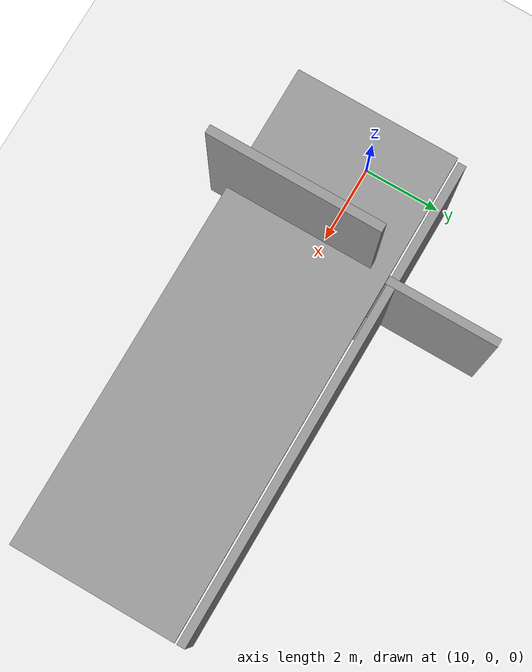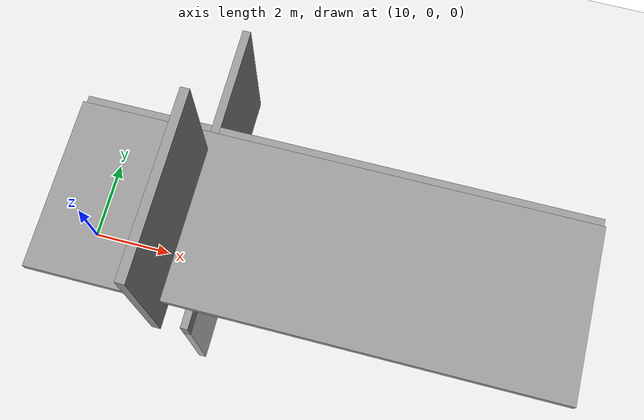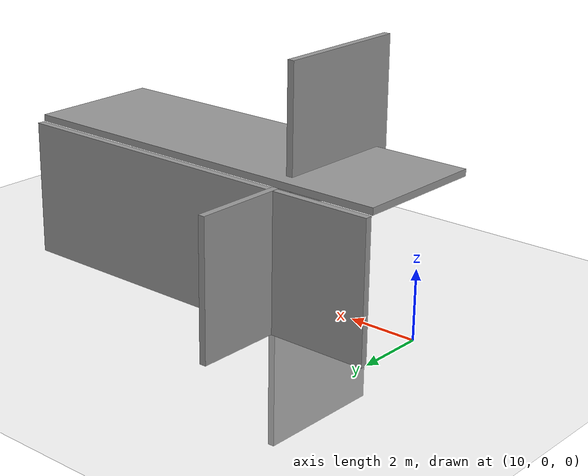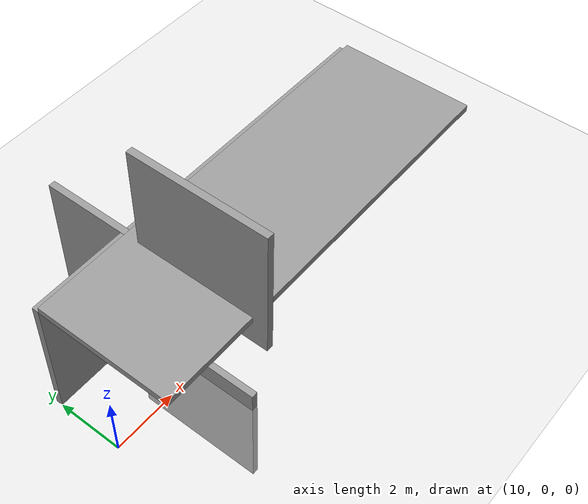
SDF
<sdf version="1.7">
 <world name="default">
  <model name="ground_plane">
   <static>1</static>
   <link name="link">
    <collision name="collision">
     <geometry><plane><normal>0 0 1</normal><size>100 100</size></plane></geometry>
     <surface>
      <contact><collide_bitmask>65535</collide_bitmask></contact>
      <friction><ode><mu>100</mu><mu2>50</mu2></ode></friction>
     </surface>
    </collision>
    <visual name="visual">
     <cast_shadows>0</cast_shadows>
     <geometry><plane><normal>0 0 1</normal><size>100 100</size></plane></geometry>
     <material>
      <script><uri>file://media/materials/scripts/gazebo.material</uri><name>Gazebo/Grey</name></script>
     </material>
    </visual>
   </link>
  </model>
  <model name="grey_wall_clone_clone">
   <static>1</static>
   <link name="link">
    <pose>0 0 2 0 -0 0</pose>
    <collision name="collision"><geometry><box><size>12 0.2 4</size></box></geometry></collision>
    <visual name="visual">
     <cast_shadows>0</cast_shadows>
     <geometry><box><size>12 0.2 4</size></box></geometry>
     <material><script><name>vrc/grey_wall</name><uri>__default__</uri></script></material>
    </visual>
   </link>
   <pose>16.0069 2.10317 -0.00644 0 -0 0</pose>
  </model>
  <model name="grey_wall_0_clone_1_clone">
   <static>1</static>
   <link name="link">
    <pose>0 0 2 0 -0 0</pose>
    <collision name="collision"><geometry><box><size>0.2 4 4</size></box></geometry></collision>
    <visual name="visual">
     <cast_shadows>0</cast_shadows>
     <geometry><box><size>0.2 4 4</size></box></geometry>
     <material><script><name>vrc/grey_wall</name><uri>__default__</uri></script></material>
    </visual>
   </link>
   <pose>13.0714 2.72769 0 0 -0 0</pose>
  </model>
  <model name="grey_wall_0_clone_1_clone_0_clone">
   <static>1</static>
   <link name="link">
    <pose>0 0 2 0 -0 0</pose>
    <collision name="collision"><geometry><box><size>0.2 4 4</size></box></geometry></collision>
    <visual name="visual">
     <cast_shadows>0</cast_shadows>
     <geometry><box><size>0.2 4 4</size></box></geometry>
     <material><script><name>vrc/grey_wall</name><uri>__default__</uri></script></material>
    </visual>
   </link>
   <pose>12.9912 -0.468476 3.25039 0 -0 0</pose>
  </model>
  <model name="grey_wall_0_clone_1_clone_0_clone_clone_1">
   <static>1</static>
   <link name="link">
    <pose>0 0 2 0 -0 0</pose>
    <collision name="collision"><geometry><box><size>0.2 4 4</size></box></geometry></collision>
    <visual name="visual">
     <cast_shadows>0</cast_shadows>
     <geometry><box><size>0.2 4 4</size></box></geometry>
     <material><script><name>vrc/grey_wall</name><uri>__default__</uri></script></material>
    </visual>
   </link>
   <pose>13.0698 0.073294 -3.38849 0 -0 0</pose>
  </model>
  <model name="grey_wall_1_clone">
   <static>1</static>
   <link name="link">
    <pose>0 0 2 0 -0 0</pose>
    <collision name="collision"><geometry><box><size>12 4 0.2</size></box></geometry></collision>
    <visual name="visual">
     <cast_shadows>0</cast_shadows>
     <geometry><box><size>12 4 0.2</size></box></geometry>
     <material><script><name>vrc/grey_wall</name><uri>__default__</uri></script></material>
    </visual>
   </link>
   <pose>15.9987 -0.040014 2.09857 0 -0 0</pose>
  </model>
 </world>
</sdf>
